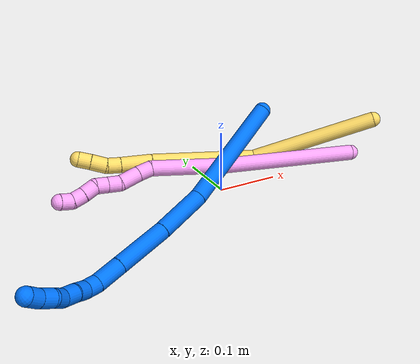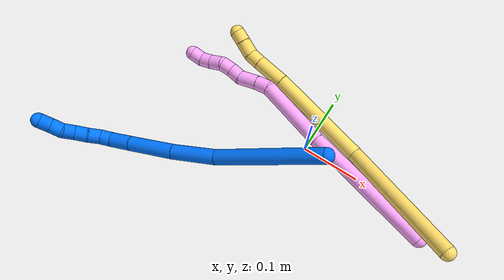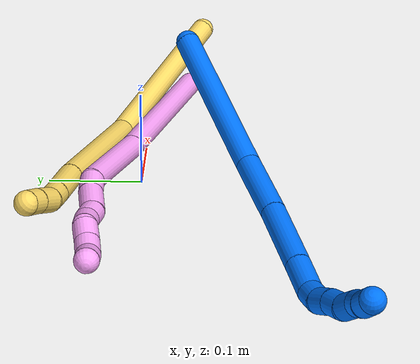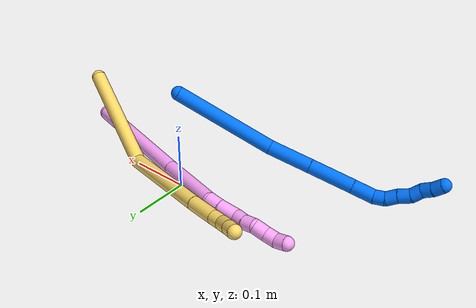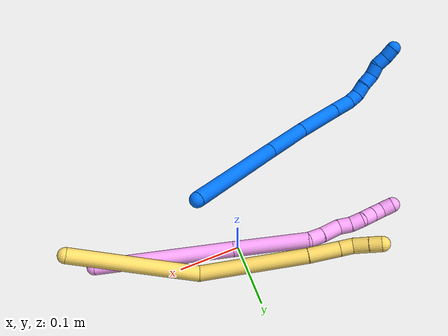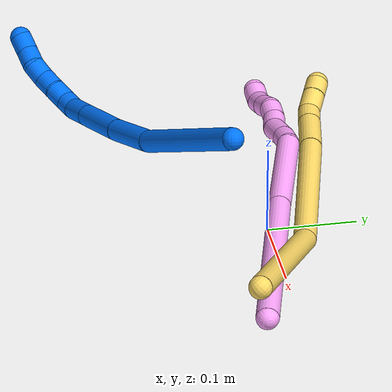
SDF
<sdf version="1.7">
 <world name="default">
  <model name="photoneo_s_sensor">
   <static>1</static>
   <pose>0 0 2 1.57079 1.57079 3.14159</pose>
   <link name="link">
    <inertial><mass>0.1</mass></inertial>
    <sensor name="sensor" type="depth">
     <update_rate>30</update_rate>
     <camera>
      <horizontal_fov>1.22</horizontal_fov>
      <image><width>1920</width><height>1200</height><format>B8G8R8</format></image>
      <clip><near>0.1</near><far>4</far></clip>
      <depth_camera><output>points</output></depth_camera>
     </camera>
     <plugin name="camera_plugin" filename="libgazebo_ros_depth_camera.so">
      <baseline>0.2</baseline>
      <alwaysOn>1</alwaysOn>
      <updateRate>0.0</updateRate>
      <cameraName>camera_ir</cameraName>
      <imageTopicName>/camera/color/image_raw</imageTopicName>
      <cameraInfoTopicName>/camera/color/camera_info</cameraInfoTopicName>
      <depthImageTopicName>/camera/depth/image_raw</depthImageTopicName>
      <depthImageCameraInfoTopicName>/camera/depth/camera_info</depthImageCameraInfoTopicName>
      <pointCloudTopicName>/camera/depth/points</pointCloudTopicName>
      <frameName>fr_optical</frameName>
      <pointCloudCutoff>0.1</pointCloudCutoff>
      <pointCloudCutoffMax>2.0</pointCloudCutoffMax>
      <distortionK1>0</distortionK1>
      <distortionK2>0</distortionK2>
      <distortionK3>0</distortionK3>
      <distortionT1>0</distortionT1>
      <distortionT2>0</distortionT2>
      <CxPrime>0</CxPrime>
      <Cx>0</Cx>
      <Cy>0</Cy>
      <focalLength>0</focalLength>
      <hackBaseline>0</hackBaseline>
     </plugin>
    </sensor>
   </link>
  </model>
  <model name="bin">
   <static>1</static>
   <link name="bottom">
    <collision name="collision-bottom">
     <pose>0 0 -0.01 0 -0 0</pose>
     <geometry><box><size>0.8 0.6 0.02</size></box></geometry>
     <surface>
      <friction><ode><mu>100</mu><mu2>100</mu2></ode></friction>
      <contact><collide_bitmask>65535</collide_bitmask></contact>
     </surface>
    </collision>
   </link>
   <link name="west_wall">
    <collision name="collision-west_wall">
     <pose>-0.41 0 0.1 0 -0 0</pose>
     <geometry><box><size>0.02 0.6 0.2</size></box></geometry>
     <surface>
      <friction><ode><mu>100</mu><mu2>100</mu2></ode></friction>
      <contact><collide_bitmask>65535</collide_bitmask></contact>
     </surface>
    </collision>
   </link>
   <link name="east_wall">
    <collision name="collision-east_wall">
     <pose>0.41 0 0.1 0 -0 0</pose>
     <geometry><box><size>0.02 0.6 0.2</size></box></geometry>
     <surface>
      <friction><ode><mu>100</mu><mu2>100</mu2></ode></friction>
      <contact><collide_bitmask>65535</collide_bitmask></contact>
     </surface>
    </collision>
   </link>
   <link name="south_wall">
    <collision name="collision-south_wall">
     <pose>0 -0.31 0.1 0 -0 0</pose>
     <geometry><box><size>0.8 0.02 0.2</size></box></geometry>
     <surface>
      <friction><ode><mu>100</mu><mu2>100</mu2></ode></friction>
      <contact><collide_bitmask>65535</collide_bitmask></contact>
     </surface>
    </collision>
   </link>
   <link name="north_wall">
    <collision name="collision-north_wall">
     <pose>0 0.31 0.1 0 -0 0</pose>
     <geometry><box><size>0.8 0.02 0.2</size></box></geometry>
     <surface>
      <friction><ode><mu>100</mu><mu2>100</mu2></ode></friction>
      <contact><collide_bitmask>65535</collide_bitmask></contact>
     </surface>
    </collision>
   </link>
  </model>
  <model name="4">
   <static>0</static>
   <link name="4">
    <collision name="collision-cylinder-e_1_1_4">
     <pose>-0.031753 0.005422 0.105348 -0.051425 -0.292387 0.007574</pose>
     <geometry><cylinder><radius>0.0125</radius><length>0.220326</length></cylinder></geometry>
     <surface>
      <friction><ode><mu>1.16</mu><mu2>1.16</mu2><slip1>0</slip1><slip2>0</slip2></ode></friction>
      <contact><ode><kp>1e+06</kp><kd>1</kd><max_vel>0</max_vel><min_depth>0.001</min_depth></ode></contact>
     </surface>
    </collision>
    <visual name="visual-cylinder-e_1_1_4">
     <pose>-0.031753 0.005422 0.105348 -0.051425 -0.292387 0.007574</pose>
     <geometry><cylinder><radius>0.0125</radius><length>0.220326</length></cylinder></geometry>
     <material><ambient>1 0.65098 0.996078 1</ambient></material>
    </visual>
    <collision name="collision-cylinder-e_2_4_5">
     <pose>-0.082782 0.01709 0.267196 -0.110092 -0.326937 0.018176</pose>
     <geometry><cylinder><radius>0.0125</radius><length>0.120047</length></cylinder></geometry>
     <surface>
      <friction><ode><mu>1.16</mu><mu2>1.16</mu2><slip1>0</slip1><slip2>0</slip2></ode></friction>
      <contact><ode><kp>1e+06</kp><kd>1</kd><max_vel>0</max_vel><min_depth>0.001</min_depth></ode></contact>
     </surface>
    </collision>
    <visual name="visual-cylinder-e_2_4_5">
     <pose>-0.082782 0.01709 0.267196 -0.110092 -0.326937 0.018176</pose>
     <geometry><cylinder><radius>0.0125</radius><length>0.120047</length></cylinder></geometry>
     <material><ambient>1 0.65098 0.996078 1</ambient></material>
    </visual>
    <collision name="collision-cylinder-e_3_5_6">
     <pose>-0.101998 0.022113 0.335318 0.104801 0.005144 0.00027</pose>
     <geometry><cylinder><radius>0.0125</radius><length>0.023374</length></cylinder></geometry>
     <surface>
      <friction><ode><mu>1.16</mu><mu2>1.16</mu2><slip1>0</slip1><slip2>0</slip2></ode></friction>
      <contact><ode><kp>1e+06</kp><kd>1</kd><max_vel>0</max_vel><min_depth>0.001</min_depth></ode></contact>
     </surface>
    </collision>
    <visual name="visual-cylinder-e_3_5_6">
     <pose>-0.101998 0.022113 0.335318 0.104801 0.005144 0.00027</pose>
     <geometry><cylinder><radius>0.0125</radius><length>0.023374</length></cylinder></geometry>
     <material><ambient>1 0.65098 0.996078 1</ambient></material>
    </visual>
    <collision name="collision-cylinder-e_4_6_7">
     <pose>-0.099891 0.019189 0.363127 0.104701 0.125127 0.006565</pose>
     <geometry><cylinder><radius>0.0125</radius><length>0.032808</length></cylinder></geometry>
     <surface>
      <friction><ode><mu>1.16</mu><mu2>1.16</mu2><slip1>0</slip1><slip2>0</slip2></ode></friction>
      <contact><ode><kp>1e+06</kp><kd>1</kd><max_vel>0</max_vel><min_depth>0.001</min_depth></ode></contact>
     </surface>
    </collision>
    <visual name="visual-cylinder-e_4_6_7">
     <pose>-0.099891 0.019189 0.363127 0.104701 0.125127 0.006565</pose>
     <geometry><cylinder><radius>0.0125</radius><length>0.032808</length></cylinder></geometry>
     <material><ambient>1 0.65098 0.996078 1</ambient></material>
    </visual>
    <collision name="collision-cylinder-e_5_7_8">
     <pose>-0.100194 0.018291 0.389409 -0.079323 -0.228046 0.009089</pose>
     <geometry><cylinder><radius>0.0125</radius><length>0.020794</length></cylinder></geometry>
     <surface>
      <friction><ode><mu>1.16</mu><mu2>1.16</mu2><slip1>0</slip1><slip2>0</slip2></ode></friction>
      <contact><ode><kp>1e+06</kp><kd>1</kd><max_vel>0</max_vel><min_depth>0.001</min_depth></ode></contact>
     </surface>
    </collision>
    <visual name="visual-cylinder-e_5_7_8">
     <pose>-0.100194 0.018291 0.389409 -0.079323 -0.228046 0.009089</pose>
     <geometry><cylinder><radius>0.0125</radius><length>0.020794</length></cylinder></geometry>
     <material><ambient>1 0.65098 0.996078 1</ambient></material>
    </visual>
    <collision name="collision-cylinder-e_6_8_9">
     <pose>-0.103094 0.021096 0.409361 -0.200478 -0.054516 0.005484</pose>
     <geometry><cylinder><radius>0.0125</radius><length>0.020144</length></cylinder></geometry>
     <surface>
      <friction><ode><mu>1.16</mu><mu2>1.16</mu2><slip1>0</slip1><slip2>0</slip2></ode></friction>
      <contact><ode><kp>1e+06</kp><kd>1</kd><max_vel>0</max_vel><min_depth>0.001</min_depth></ode></contact>
     </surface>
    </collision>
    <visual name="visual-cylinder-e_6_8_9">
     <pose>-0.103094 0.021096 0.409361 -0.200478 -0.054516 0.005484</pose>
     <geometry><cylinder><radius>0.0125</radius><length>0.020144</length></cylinder></geometry>
     <material><ambient>1 0.65098 0.996078 1</ambient></material>
    </visual>
    <collision name="collision-cylinder-e_7_9_10">
     <pose>-0.10162 0.020336 0.429873 0.253721 0.181711 0.023239</pose>
     <geometry><cylinder><radius>0.0125</radius><length>0.022385</length></cylinder></geometry>
     <surface>
      <friction><ode><mu>1.16</mu><mu2>1.16</mu2><slip1>0</slip1><slip2>0</slip2></ode></friction>
      <contact><ode><kp>1e+06</kp><kd>1</kd><max_vel>0</max_vel><min_depth>0.001</min_depth></ode></contact>
     </surface>
    </collision>
    <visual name="visual-cylinder-e_7_9_10">
     <pose>-0.10162 0.020336 0.429873 0.253721 0.181711 0.023239</pose>
     <geometry><cylinder><radius>0.0125</radius><length>0.022385</length></cylinder></geometry>
     <material><ambient>1 0.65098 0.996078 1</ambient></material>
    </visual>
    <collision name="collision-cylinder-e_8_10_11">
     <pose>-0.098373 0.016117 0.450392 0.146557 0.122216 0.008983</pose>
     <geometry><cylinder><radius>0.0125</radius><length>0.020089</length></cylinder></geometry>
     <surface>
      <friction><ode><mu>1.16</mu><mu2>1.16</mu2><slip1>0</slip1><slip2>0</slip2></ode></friction>
      <contact><ode><kp>1e+06</kp><kd>1</kd><max_vel>0</max_vel><min_depth>0.001</min_depth></ode></contact>
     </surface>
    </collision>
    <visual name="visual-cylinder-e_8_10_11">
     <pose>-0.098373 0.016117 0.450392 0.146557 0.122216 0.008983</pose>
     <geometry><cylinder><radius>0.0125</radius><length>0.020089</length></cylinder></geometry>
     <material><ambient>1 0.65098 0.996078 1</ambient></material>
    </visual>
    <collision name="collision-cylinder-e_9_11_2">
     <pose>-0.097586 0.017403 0.469879 -0.277556 -0.043698 0.006105</pose>
     <geometry><cylinder><radius>0.0125</radius><length>0.020034</length></cylinder></geometry>
     <surface>
      <friction><ode><mu>1.16</mu><mu2>1.16</mu2><slip1>0</slip1><slip2>0</slip2></ode></friction>
      <contact><ode><kp>1e+06</kp><kd>1</kd><max_vel>0</max_vel><min_depth>0.001</min_depth></ode></contact>
     </surface>
    </collision>
    <visual name="visual-cylinder-e_9_11_2">
     <pose>-0.097586 0.017403 0.469879 -0.277556 -0.043698 0.006105</pose>
     <geometry><cylinder><radius>0.0125</radius><length>0.020034</length></cylinder></geometry>
     <material><ambient>1 0.65098 0.996078 1</ambient></material>
    </visual>
    <collision name="collision-sphere-2">
     <pose>-0.098023 0.020145 0.479503 0 -0 0</pose>
     <geometry><sphere><radius>0.0125</radius></sphere></geometry>
     <surface>
      <friction><ode><mu>1.16</mu><mu2>1.16</mu2><slip1>0</slip1><slip2>0</slip2></ode></friction>
      <contact><ode><kp>1e+06</kp><kd>1</kd><max_vel>0</max_vel><min_depth>0.001</min_depth></ode></contact>
     </surface>
    </collision>
    <visual name="visual-sphere-2">
     <pose>-0.098023 0.020145 0.479503 0 -0 0</pose>
     <geometry><sphere><radius>0.0125</radius></sphere></geometry>
     <material><ambient>1 0.65098 0.996078 1</ambient></material>
    </visual>
    <collision name="collision-sphere-11">
     <pose>-0.097148 0.014661 0.460254 0 -0 0</pose>
     <geometry><sphere><radius>0.0125</radius></sphere></geometry>
     <surface>
      <friction><ode><mu>1.16</mu><mu2>1.16</mu2><slip1>0</slip1><slip2>0</slip2></ode></friction>
      <contact><ode><kp>1e+06</kp><kd>1</kd><max_vel>0</max_vel><min_depth>0.001</min_depth></ode></contact>
     </surface>
    </collision>
    <visual name="visual-sphere-11">
     <pose>-0.097148 0.014661 0.460254 0 -0 0</pose>
     <geometry><sphere><radius>0.0125</radius></sphere></geometry>
     <material><ambient>1 0.65098 0.996078 1</ambient></material>
    </visual>
    <collision name="collision-sphere-10">
     <pose>-0.099597 0.017573 0.440529 0 -0 0</pose>
     <geometry><sphere><radius>0.0125</radius></sphere></geometry>
     <surface>
      <friction><ode><mu>1.16</mu><mu2>1.16</mu2><slip1>0</slip1><slip2>0</slip2></ode></friction>
      <contact><ode><kp>1e+06</kp><kd>1</kd><max_vel>0</max_vel><min_depth>0.001</min_depth></ode></contact>
     </surface>
    </collision>
    <visual name="visual-sphere-10">
     <pose>-0.099597 0.017573 0.440529 0 -0 0</pose>
     <geometry><sphere><radius>0.0125</radius></sphere></geometry>
     <material><ambient>1 0.65098 0.996078 1</ambient></material>
    </visual>
    <collision name="collision-sphere-9">
     <pose>-0.103643 0.023099 0.419217 0 -0 0</pose>
     <geometry><sphere><radius>0.0125</radius></sphere></geometry>
     <surface>
      <friction><ode><mu>1.16</mu><mu2>1.16</mu2><slip1>0</slip1><slip2>0</slip2></ode></friction>
      <contact><ode><kp>1e+06</kp><kd>1</kd><max_vel>0</max_vel><min_depth>0.001</min_depth></ode></contact>
     </surface>
    </collision>
    <visual name="visual-sphere-9">
     <pose>-0.103643 0.023099 0.419217 0 -0 0</pose>
     <geometry><sphere><radius>0.0125</radius></sphere></geometry>
     <material><ambient>1 0.65098 0.996078 1</ambient></material>
    </visual>
    <collision name="collision-sphere-4">
     <pose>-0.063506 0.010845 0.210696 0 -0 0</pose>
     <geometry><sphere><radius>0.0125</radius></sphere></geometry>
     <surface>
      <friction><ode><mu>1.16</mu><mu2>1.16</mu2><slip1>0</slip1><slip2>0</slip2></ode></friction>
      <contact><ode><kp>1e+06</kp><kd>1</kd><max_vel>0</max_vel><min_depth>0.001</min_depth></ode></contact>
     </surface>
    </collision>
    <visual name="visual-sphere-4">
     <pose>-0.063506 0.010845 0.210696 0 -0 0</pose>
     <geometry><sphere><radius>0.0125</radius></sphere></geometry>
     <material><ambient>1 0.65098 0.996078 1</ambient></material>
    </visual>
    <collision name="collision-sphere-1">
     <geometry><sphere><radius>0.0125</radius></sphere></geometry>
     <surface>
      <friction><ode><mu>1.16</mu><mu2>1.16</mu2><slip1>0</slip1><slip2>0</slip2></ode></friction>
      <contact><ode><kp>1e+06</kp><kd>1</kd><max_vel>0</max_vel><min_depth>0.001</min_depth></ode></contact>
     </surface>
    </collision>
    <visual name="visual-sphere-1">
     <geometry><sphere><radius>0.0125</radius></sphere></geometry>
     <material><ambient>1 0.65098 0.996078 1</ambient></material>
    </visual>
    <collision name="collision-sphere-8">
     <pose>-0.102545 0.019094 0.399505 0 -0 0</pose>
     <geometry><sphere><radius>0.0125</radius></sphere></geometry>
     <surface>
      <friction><ode><mu>1.16</mu><mu2>1.16</mu2><slip1>0</slip1><slip2>0</slip2></ode></friction>
      <contact><ode><kp>1e+06</kp><kd>1</kd><max_vel>0</max_vel><min_depth>0.001</min_depth></ode></contact>
     </surface>
    </collision>
    <visual name="visual-sphere-8">
     <pose>-0.102545 0.019094 0.399505 0 -0 0</pose>
     <geometry><sphere><radius>0.0125</radius></sphere></geometry>
     <material><ambient>1 0.65098 0.996078 1</ambient></material>
    </visual>
    <collision name="collision-sphere-5">
     <pose>-0.102059 0.023335 0.323695 0 -0 0</pose>
     <geometry><sphere><radius>0.0125</radius></sphere></geometry>
     <surface>
      <friction><ode><mu>1.16</mu><mu2>1.16</mu2><slip1>0</slip1><slip2>0</slip2></ode></friction>
      <contact><ode><kp>1e+06</kp><kd>1</kd><max_vel>0</max_vel><min_depth>0.001</min_depth></ode></contact>
     </surface>
    </collision>
    <visual name="visual-sphere-5">
     <pose>-0.102059 0.023335 0.323695 0 -0 0</pose>
     <geometry><sphere><radius>0.0125</radius></sphere></geometry>
     <material><ambient>1 0.65098 0.996078 1</ambient></material>
    </visual>
    <collision name="collision-sphere-6">
     <pose>-0.101938 0.02089 0.34694 0 -0 0</pose>
     <geometry><sphere><radius>0.0125</radius></sphere></geometry>
     <surface>
      <friction><ode><mu>1.16</mu><mu2>1.16</mu2><slip1>0</slip1><slip2>0</slip2></ode></friction>
      <contact><ode><kp>1e+06</kp><kd>1</kd><max_vel>0</max_vel><min_depth>0.001</min_depth></ode></contact>
     </surface>
    </collision>
    <visual name="visual-sphere-6">
     <pose>-0.101938 0.02089 0.34694 0 -0 0</pose>
     <geometry><sphere><radius>0.0125</radius></sphere></geometry>
     <material><ambient>1 0.65098 0.996078 1</ambient></material>
    </visual>
    <collision name="collision-sphere-7">
     <pose>-0.097844 0.017488 0.379313 0 -0 0</pose>
     <geometry><sphere><radius>0.0125</radius></sphere></geometry>
     <surface>
      <friction><ode><mu>1.16</mu><mu2>1.16</mu2><slip1>0</slip1><slip2>0</slip2></ode></friction>
      <contact><ode><kp>1e+06</kp><kd>1</kd><max_vel>0</max_vel><min_depth>0.001</min_depth></ode></contact>
     </surface>
    </collision>
    <visual name="visual-sphere-7">
     <pose>-0.097844 0.017488 0.379313 0 -0 0</pose>
     <geometry><sphere><radius>0.0125</radius></sphere></geometry>
     <material><ambient>1 0.65098 0.996078 1</ambient></material>
    </visual>
    <inertial>
     <pose>-0.065923 0.012651 0.238931 0 -0 0</pose>
     <mass>0.5</mass>
     <inertia>
      <ixx>0.001018</ixx>
      <ixy>0</ixy>
      <ixz>0</ixz>
      <iyy>0.001071</iyy>
      <iyz>0</iyz>
      <izz>0.000285</izz>
     </inertia>
    </inertial>
   </link>
   <pose>0.224764 -0.045029 0.034892 1.65478 0.142489 -1.53159</pose>
  </model>
  <model name="5">
   <static>0</static>
   <link name="5">
    <collision name="collision-cylinder-e_1_1_4">
     <pose>-0.087228 0.055742 0.009661 -1.39919 -0.995426 0.857768</pose>
     <geometry><cylinder><radius>0.0125</radius><length>0.207934</length></cylinder></geometry>
     <surface>
      <friction><ode><mu>1.16</mu><mu2>1.16</mu2><slip1>0</slip1><slip2>0</slip2></ode></friction>
      <contact><ode><kp>1e+06</kp><kd>1</kd><max_vel>0</max_vel><min_depth>0.001</min_depth></ode></contact>
     </surface>
    </collision>
    <visual name="visual-cylinder-e_1_1_4">
     <pose>-0.087228 0.055742 0.009661 -1.39919 -0.995426 0.857768</pose>
     <geometry><cylinder><radius>0.0125</radius><length>0.207934</length></cylinder></geometry>
     <material><ambient>1 0.858824 0.4 1</ambient></material>
    </visual>
    <collision name="collision-cylinder-e_2_4_5">
     <pose>-0.250058 0.144624 -0.007125 -2.24434 -1.0597 1.76576</pose>
     <geometry><cylinder><radius>0.0125</radius><length>0.173361</length></cylinder></geometry>
     <surface>
      <friction><ode><mu>1.16</mu><mu2>1.16</mu2><slip1>0</slip1><slip2>0</slip2></ode></friction>
      <contact><ode><kp>1e+06</kp><kd>1</kd><max_vel>0</max_vel><min_depth>0.001</min_depth></ode></contact>
     </surface>
    </collision>
    <visual name="visual-cylinder-e_2_4_5">
     <pose>-0.250058 0.144624 -0.007125 -2.24434 -1.0597 1.76576</pose>
     <geometry><cylinder><radius>0.0125</radius><length>0.173361</length></cylinder></geometry>
     <material><ambient>1 0.858824 0.4 1</ambient></material>
    </visual>
    <collision name="collision-cylinder-e_3_5_6">
     <pose>-0.346978 0.189157 -0.041884 -2.20108 -0.986282 1.62652</pose>
     <geometry><cylinder><radius>0.0125</radius><length>0.051119</length></cylinder></geometry>
     <surface>
      <friction><ode><mu>1.16</mu><mu2>1.16</mu2><slip1>0</slip1><slip2>0</slip2></ode></friction>
      <contact><ode><kp>1e+06</kp><kd>1</kd><max_vel>0</max_vel><min_depth>0.001</min_depth></ode></contact>
     </surface>
    </collision>
    <visual name="visual-cylinder-e_3_5_6">
     <pose>-0.346978 0.189157 -0.041884 -2.20108 -0.986282 1.62652</pose>
     <geometry><cylinder><radius>0.0125</radius><length>0.051119</length></cylinder></geometry>
     <material><ambient>1 0.858824 0.4 1</ambient></material>
    </visual>
    <collision name="collision-cylinder-e_4_6_7">
     <pose>-0.377332 0.205003 -0.053918 -2.26706 -1.00004 1.7261</pose>
     <geometry><cylinder><radius>0.0125</radius><length>0.02148</length></cylinder></geometry>
     <surface>
      <friction><ode><mu>1.16</mu><mu2>1.16</mu2><slip1>0</slip1><slip2>0</slip2></ode></friction>
      <contact><ode><kp>1e+06</kp><kd>1</kd><max_vel>0</max_vel><min_depth>0.001</min_depth></ode></contact>
     </surface>
    </collision>
    <visual name="visual-cylinder-e_4_6_7">
     <pose>-0.377332 0.205003 -0.053918 -2.26706 -1.00004 1.7261</pose>
     <geometry><cylinder><radius>0.0125</radius><length>0.02148</length></cylinder></geometry>
     <material><ambient>1 0.858824 0.4 1</ambient></material>
    </visual>
    <collision name="collision-cylinder-e_5_7_8">
     <pose>-0.39862 0.210746 -0.061842 -2.84356 -1.22622 2.72112</pose>
     <geometry><cylinder><radius>0.0125</radius><length>0.026031</length></cylinder></geometry>
     <surface>
      <friction><ode><mu>1.16</mu><mu2>1.16</mu2><slip1>0</slip1><slip2>0</slip2></ode></friction>
      <contact><ode><kp>1e+06</kp><kd>1</kd><max_vel>0</max_vel><min_depth>0.001</min_depth></ode></contact>
     </surface>
    </collision>
    <visual name="visual-cylinder-e_5_7_8">
     <pose>-0.39862 0.210746 -0.061842 -2.84356 -1.22622 2.72112</pose>
     <geometry><cylinder><radius>0.0125</radius><length>0.026031</length></cylinder></geometry>
     <material><ambient>1 0.858824 0.4 1</ambient></material>
    </visual>
    <collision name="collision-cylinder-e_6_8_2">
     <pose>-0.420337 0.213425 -0.069078 -2.71253 -1.23205 2.54445</pose>
     <geometry><cylinder><radius>0.0125</radius><length>0.020074</length></cylinder></geometry>
     <surface>
      <friction><ode><mu>1.16</mu><mu2>1.16</mu2><slip1>0</slip1><slip2>0</slip2></ode></friction>
      <contact><ode><kp>1e+06</kp><kd>1</kd><max_vel>0</max_vel><min_depth>0.001</min_depth></ode></contact>
     </surface>
    </collision>
    <visual name="visual-cylinder-e_6_8_2">
     <pose>-0.420337 0.213425 -0.069078 -2.71253 -1.23205 2.54445</pose>
     <geometry><cylinder><radius>0.0125</radius><length>0.020074</length></cylinder></geometry>
     <material><ambient>1 0.858824 0.4 1</ambient></material>
    </visual>
    <collision name="collision-sphere-2">
     <pose>-0.429804 0.214812 -0.072111 0 -0 0</pose>
     <geometry><sphere><radius>0.0125</radius></sphere></geometry>
     <surface>
      <friction><ode><mu>1.16</mu><mu2>1.16</mu2><slip1>0</slip1><slip2>0</slip2></ode></friction>
      <contact><ode><kp>1e+06</kp><kd>1</kd><max_vel>0</max_vel><min_depth>0.001</min_depth></ode></contact>
     </surface>
    </collision>
    <visual name="visual-sphere-2">
     <pose>-0.429804 0.214812 -0.072111 0 -0 0</pose>
     <geometry><sphere><radius>0.0125</radius></sphere></geometry>
     <material><ambient>1 0.858824 0.4 1</ambient></material>
    </visual>
    <collision name="collision-sphere-4">
     <pose>-0.174455 0.111485 0.019321 0 -0 0</pose>
     <geometry><sphere><radius>0.0125</radius></sphere></geometry>
     <surface>
      <friction><ode><mu>1.16</mu><mu2>1.16</mu2><slip1>0</slip1><slip2>0</slip2></ode></friction>
      <contact><ode><kp>1e+06</kp><kd>1</kd><max_vel>0</max_vel><min_depth>0.001</min_depth></ode></contact>
     </surface>
    </collision>
    <visual name="visual-sphere-4">
     <pose>-0.174455 0.111485 0.019321 0 -0 0</pose>
     <geometry><sphere><radius>0.0125</radius></sphere></geometry>
     <material><ambient>1 0.858824 0.4 1</ambient></material>
    </visual>
    <collision name="collision-sphere-1">
     <geometry><sphere><radius>0.0125</radius></sphere></geometry>
     <surface>
      <friction><ode><mu>1.16</mu><mu2>1.16</mu2><slip1>0</slip1><slip2>0</slip2></ode></friction>
      <contact><ode><kp>1e+06</kp><kd>1</kd><max_vel>0</max_vel><min_depth>0.001</min_depth></ode></contact>
     </surface>
    </collision>
    <visual name="visual-sphere-1">
     <geometry><sphere><radius>0.0125</radius></sphere></geometry>
     <material><ambient>1 0.858824 0.4 1</ambient></material>
    </visual>
    <collision name="collision-sphere-8">
     <pose>-0.41087 0.212037 -0.066045 0 -0 0</pose>
     <geometry><sphere><radius>0.0125</radius></sphere></geometry>
     <surface>
      <friction><ode><mu>1.16</mu><mu2>1.16</mu2><slip1>0</slip1><slip2>0</slip2></ode></friction>
      <contact><ode><kp>1e+06</kp><kd>1</kd><max_vel>0</max_vel><min_depth>0.001</min_depth></ode></contact>
     </surface>
    </collision>
    <visual name="visual-sphere-8">
     <pose>-0.41087 0.212037 -0.066045 0 -0 0</pose>
     <geometry><sphere><radius>0.0125</radius></sphere></geometry>
     <material><ambient>1 0.858824 0.4 1</ambient></material>
    </visual>
    <collision name="collision-sphere-5">
     <pose>-0.325662 0.177764 -0.033572 0 -0 0</pose>
     <geometry><sphere><radius>0.0125</radius></sphere></geometry>
     <surface>
      <friction><ode><mu>1.16</mu><mu2>1.16</mu2><slip1>0</slip1><slip2>0</slip2></ode></friction>
      <contact><ode><kp>1e+06</kp><kd>1</kd><max_vel>0</max_vel><min_depth>0.001</min_depth></ode></contact>
     </surface>
    </collision>
    <visual name="visual-sphere-5">
     <pose>-0.325662 0.177764 -0.033572 0 -0 0</pose>
     <geometry><sphere><radius>0.0125</radius></sphere></geometry>
     <material><ambient>1 0.858824 0.4 1</ambient></material>
    </visual>
    <collision name="collision-sphere-6">
     <pose>-0.368294 0.200551 -0.050197 0 -0 0</pose>
     <geometry><sphere><radius>0.0125</radius></sphere></geometry>
     <surface>
      <friction><ode><mu>1.16</mu><mu2>1.16</mu2><slip1>0</slip1><slip2>0</slip2></ode></friction>
      <contact><ode><kp>1e+06</kp><kd>1</kd><max_vel>0</max_vel><min_depth>0.001</min_depth></ode></contact>
     </surface>
    </collision>
    <visual name="visual-sphere-6">
     <pose>-0.368294 0.200551 -0.050197 0 -0 0</pose>
     <geometry><sphere><radius>0.0125</radius></sphere></geometry>
     <material><ambient>1 0.858824 0.4 1</ambient></material>
    </visual>
    <collision name="collision-sphere-7">
     <pose>-0.386369 0.209455 -0.05764 0 -0 0</pose>
     <geometry><sphere><radius>0.0125</radius></sphere></geometry>
     <surface>
      <friction><ode><mu>1.16</mu><mu2>1.16</mu2><slip1>0</slip1><slip2>0</slip2></ode></friction>
      <contact><ode><kp>1e+06</kp><kd>1</kd><max_vel>0</max_vel><min_depth>0.001</min_depth></ode></contact>
     </surface>
    </collision>
    <visual name="visual-sphere-7">
     <pose>-0.386369 0.209455 -0.05764 0 -0 0</pose>
     <geometry><sphere><radius>0.0125</radius></sphere></geometry>
     <material><ambient>1 0.858824 0.4 1</ambient></material>
    </visual>
    <inertial>
     <pose>-0.21229 0.121013 -0.011045 0 -0 0</pose>
     <mass>0.5</mass>
     <inertia>
      <ixx>0.000725</ixx>
      <ixy>0</ixy>
      <ixz>0</ixz>
      <iyy>0.00147</iyy>
      <iyz>0</iyz>
      <izz>0.000449</izz>
     </inertia>
    </inertial>
   </link>
   <pose>0.255225 -0.059066 0.093183 -2.30033 0.18584 -0.747254</pose>
  </model>
  <model name="14">
   <static>0</static>
   <link name="14">
    <collision name="collision-cylinder-e_1_1_4">
     <pose>-0.086894 -0.022916 0.005243 1.34587 -1.30658 -1.09558</pose>
     <geometry><cylinder><radius>0.0125</radius><length>0.180036</length></cylinder></geometry>
     <surface>
      <friction><ode><mu>1.16</mu><mu2>1.16</mu2><slip1>0</slip1><slip2>0</slip2></ode></friction>
      <contact><ode><kp>1e+06</kp><kd>1</kd><max_vel>0</max_vel><min_depth>0.001</min_depth></ode></contact>
     </surface>
    </collision>
    <visual name="visual-cylinder-e_1_1_4">
     <pose>-0.086894 -0.022916 0.005243 1.34587 -1.30658 -1.09558</pose>
     <geometry><cylinder><radius>0.0125</radius><length>0.180036</length></cylinder></geometry>
     <material><ambient>0 0.462745 1 1</ambient></material>
    </visual>
    <collision name="collision-cylinder-e_2_4_5">
     <pose>-0.209859 -0.054102 0.019387 0.748651 -1.2459 -0.550114</pose>
     <geometry><cylinder><radius>0.0125</radius><length>0.076123</length></cylinder></geometry>
     <surface>
      <friction><ode><mu>1.16</mu><mu2>1.16</mu2><slip1>0</slip1><slip2>0</slip2></ode></friction>
      <contact><ode><kp>1e+06</kp><kd>1</kd><max_vel>0</max_vel><min_depth>0.001</min_depth></ode></contact>
     </surface>
    </collision>
    <visual name="visual-cylinder-e_2_4_5">
     <pose>-0.209859 -0.054102 0.019387 0.748651 -1.2459 -0.550114</pose>
     <geometry><cylinder><radius>0.0125</radius><length>0.076123</length></cylinder></geometry>
     <material><ambient>0 0.462745 1 1</ambient></material>
    </visual>
    <collision name="collision-cylinder-e_3_5_6">
     <pose>-0.283761 -0.069297 0.03936 0.558927 -1.23842 -0.403496</pose>
     <geometry><cylinder><radius>0.0125</radius><length>0.080045</length></cylinder></geometry>
     <surface>
      <friction><ode><mu>1.16</mu><mu2>1.16</mu2><slip1>0</slip1><slip2>0</slip2></ode></friction>
      <contact><ode><kp>1e+06</kp><kd>1</kd><max_vel>0</max_vel><min_depth>0.001</min_depth></ode></contact>
     </surface>
    </collision>
    <visual name="visual-cylinder-e_3_5_6">
     <pose>-0.283761 -0.069297 0.03936 0.558927 -1.23842 -0.403496</pose>
     <geometry><cylinder><radius>0.0125</radius><length>0.080045</length></cylinder></geometry>
     <material><ambient>0 0.462745 1 1</ambient></material>
    </visual>
    <collision name="collision-cylinder-e_4_6_7">
     <pose>-0.340051 -0.07943 0.055762 0.541868 -1.24572 -0.393829</pose>
     <geometry><cylinder><radius>0.0125</radius><length>0.038956</length></cylinder></geometry>
     <surface>
      <friction><ode><mu>1.16</mu><mu2>1.16</mu2><slip1>0</slip1><slip2>0</slip2></ode></friction>
      <contact><ode><kp>1e+06</kp><kd>1</kd><max_vel>0</max_vel><min_depth>0.001</min_depth></ode></contact>
     </surface>
    </collision>
    <visual name="visual-cylinder-e_4_6_7">
     <pose>-0.340051 -0.07943 0.055762 0.541868 -1.24572 -0.393829</pose>
     <geometry><cylinder><radius>0.0125</radius><length>0.038956</length></cylinder></geometry>
     <material><ambient>0 0.462745 1 1</ambient></material>
    </visual>
    <collision name="collision-cylinder-e_5_7_8">
     <pose>-0.366711 -0.08519 0.066434 0.445513 -0.9456 -0.230694</pose>
     <geometry><cylinder><radius>0.0125</radius><length>0.020232</length></cylinder></geometry>
     <surface>
      <friction><ode><mu>1.16</mu><mu2>1.16</mu2><slip1>0</slip1><slip2>0</slip2></ode></friction>
      <contact><ode><kp>1e+06</kp><kd>1</kd><max_vel>0</max_vel><min_depth>0.001</min_depth></ode></contact>
     </surface>
    </collision>
    <visual name="visual-cylinder-e_5_7_8">
     <pose>-0.366711 -0.08519 0.066434 0.445513 -0.9456 -0.230694</pose>
     <geometry><cylinder><radius>0.0125</radius><length>0.020232</length></cylinder></geometry>
     <material><ambient>0 0.462745 1 1</ambient></material>
    </visual>
    <collision name="collision-cylinder-e_6_8_9">
     <pose>-0.38062 -0.092691 0.079345 0.579184 -0.562888 -0.171872</pose>
     <geometry><cylinder><radius>0.0125</radius><length>0.021387</length></cylinder></geometry>
     <surface>
      <friction><ode><mu>1.16</mu><mu2>1.16</mu2><slip1>0</slip1><slip2>0</slip2></ode></friction>
      <contact><ode><kp>1e+06</kp><kd>1</kd><max_vel>0</max_vel><min_depth>0.001</min_depth></ode></contact>
     </surface>
    </collision>
    <visual name="visual-cylinder-e_6_8_9">
     <pose>-0.38062 -0.092691 0.079345 0.579184 -0.562888 -0.171872</pose>
     <geometry><cylinder><radius>0.0125</radius><length>0.021387</length></cylinder></geometry>
     <material><ambient>0 0.462745 1 1</ambient></material>
    </visual>
    <collision name="collision-cylinder-e_7_9_10">
     <pose>-0.393842 -0.101675 0.09412 0.510401 -0.738315 -0.201192</pose>
     <geometry><cylinder><radius>0.0125</radius><length>0.022334</length></cylinder></geometry>
     <surface>
      <friction><ode><mu>1.16</mu><mu2>1.16</mu2><slip1>0</slip1><slip2>0</slip2></ode></friction>
      <contact><ode><kp>1e+06</kp><kd>1</kd><max_vel>0</max_vel><min_depth>0.001</min_depth></ode></contact>
     </surface>
    </collision>
    <visual name="visual-cylinder-e_7_9_10">
     <pose>-0.393842 -0.101675 0.09412 0.510401 -0.738315 -0.201192</pose>
     <geometry><cylinder><radius>0.0125</radius><length>0.022334</length></cylinder></geometry>
     <material><ambient>0 0.462745 1 1</ambient></material>
    </visual>
    <collision name="collision-cylinder-e_8_10_11">
     <pose>-0.404697 -0.110724 0.109672 0.541021 -0.330354 -0.092386</pose>
     <geometry><cylinder><radius>0.0125</radius><length>0.020585</length></cylinder></geometry>
     <surface>
      <friction><ode><mu>1.16</mu><mu2>1.16</mu2><slip1>0</slip1><slip2>0</slip2></ode></friction>
      <contact><ode><kp>1e+06</kp><kd>1</kd><max_vel>0</max_vel><min_depth>0.001</min_depth></ode></contact>
     </surface>
    </collision>
    <visual name="visual-cylinder-e_8_10_11">
     <pose>-0.404697 -0.110724 0.109672 0.541021 -0.330354 -0.092386</pose>
     <geometry><cylinder><radius>0.0125</radius><length>0.020585</length></cylinder></geometry>
     <material><ambient>0 0.462745 1 1</ambient></material>
    </visual>
    <collision name="collision-cylinder-e_9_11_12">
     <pose>-0.413518 -0.117442 0.126237 0.204363 -0.57857 -0.061019</pose>
     <geometry><cylinder><radius>0.0125</radius><length>0.020051</length></cylinder></geometry>
     <surface>
      <friction><ode><mu>1.16</mu><mu2>1.16</mu2><slip1>0</slip1><slip2>0</slip2></ode></friction>
      <contact><ode><kp>1e+06</kp><kd>1</kd><max_vel>0</max_vel><min_depth>0.001</min_depth></ode></contact>
     </surface>
    </collision>
    <visual name="visual-cylinder-e_9_11_12">
     <pose>-0.413518 -0.117442 0.126237 0.204363 -0.57857 -0.061019</pose>
     <geometry><cylinder><radius>0.0125</radius><length>0.020051</length></cylinder></geometry>
     <material><ambient>0 0.462745 1 1</ambient></material>
    </visual>
    <collision name="collision-cylinder-e_10_12_2">
     <pose>-0.422776 -0.121688 0.1435 0.274034 -0.382204 -0.053337</pose>
     <geometry><cylinder><radius>0.0125</radius><length>0.020251</length></cylinder></geometry>
     <surface>
      <friction><ode><mu>1.16</mu><mu2>1.16</mu2><slip1>0</slip1><slip2>0</slip2></ode></friction>
      <contact><ode><kp>1e+06</kp><kd>1</kd><max_vel>0</max_vel><min_depth>0.001</min_depth></ode></contact>
     </surface>
    </collision>
    <visual name="visual-cylinder-e_10_12_2">
     <pose>-0.422776 -0.121688 0.1435 0.274034 -0.382204 -0.053337</pose>
     <geometry><cylinder><radius>0.0125</radius><length>0.020251</length></cylinder></geometry>
     <material><ambient>0 0.462745 1 1</ambient></material>
    </visual>
    <collision name="collision-sphere-2">
     <pose>-0.426553 -0.12423 0.152545 0 -0 0</pose>
     <geometry><sphere><radius>0.0125</radius></sphere></geometry>
     <surface>
      <friction><ode><mu>1.16</mu><mu2>1.16</mu2><slip1>0</slip1><slip2>0</slip2></ode></friction>
      <contact><ode><kp>1e+06</kp><kd>1</kd><max_vel>0</max_vel><min_depth>0.001</min_depth></ode></contact>
     </surface>
    </collision>
    <visual name="visual-sphere-2">
     <pose>-0.426553 -0.12423 0.152545 0 -0 0</pose>
     <geometry><sphere><radius>0.0125</radius></sphere></geometry>
     <material><ambient>0 0.462745 1 1</ambient></material>
    </visual>
    <collision name="collision-sphere-12">
     <pose>-0.419 -0.119145 0.134456 0 -0 0</pose>
     <geometry><sphere><radius>0.0125</radius></sphere></geometry>
     <surface>
      <friction><ode><mu>1.16</mu><mu2>1.16</mu2><slip1>0</slip1><slip2>0</slip2></ode></friction>
      <contact><ode><kp>1e+06</kp><kd>1</kd><max_vel>0</max_vel><min_depth>0.001</min_depth></ode></contact>
     </surface>
    </collision>
    <visual name="visual-sphere-12">
     <pose>-0.419 -0.119145 0.134456 0 -0 0</pose>
     <geometry><sphere><radius>0.0125</radius></sphere></geometry>
     <material><ambient>0 0.462745 1 1</ambient></material>
    </visual>
    <collision name="collision-sphere-11">
     <pose>-0.408036 -0.115739 0.118018 0 -0 0</pose>
     <geometry><sphere><radius>0.0125</radius></sphere></geometry>
     <surface>
      <friction><ode><mu>1.16</mu><mu2>1.16</mu2><slip1>0</slip1><slip2>0</slip2></ode></friction>
      <contact><ode><kp>1e+06</kp><kd>1</kd><max_vel>0</max_vel><min_depth>0.001</min_depth></ode></contact>
     </surface>
    </collision>
    <visual name="visual-sphere-11">
     <pose>-0.408036 -0.115739 0.118018 0 -0 0</pose>
     <geometry><sphere><radius>0.0125</radius></sphere></geometry>
     <material><ambient>0 0.462745 1 1</ambient></material>
    </visual>
    <collision name="collision-sphere-10">
     <pose>-0.401358 -0.10571 0.101327 0 -0 0</pose>
     <geometry><sphere><radius>0.0125</radius></sphere></geometry>
     <surface>
      <friction><ode><mu>1.16</mu><mu2>1.16</mu2><slip1>0</slip1><slip2>0</slip2></ode></friction>
      <contact><ode><kp>1e+06</kp><kd>1</kd><max_vel>0</max_vel><min_depth>0.001</min_depth></ode></contact>
     </surface>
    </collision>
    <visual name="visual-sphere-10">
     <pose>-0.401358 -0.10571 0.101327 0 -0 0</pose>
     <geometry><sphere><radius>0.0125</radius></sphere></geometry>
     <material><ambient>0 0.462745 1 1</ambient></material>
    </visual>
    <collision name="collision-sphere-9">
     <pose>-0.386327 -0.097641 0.086914 0 -0 0</pose>
     <geometry><sphere><radius>0.0125</radius></sphere></geometry>
     <surface>
      <friction><ode><mu>1.16</mu><mu2>1.16</mu2><slip1>0</slip1><slip2>0</slip2></ode></friction>
      <contact><ode><kp>1e+06</kp><kd>1</kd><max_vel>0</max_vel><min_depth>0.001</min_depth></ode></contact>
     </surface>
    </collision>
    <visual name="visual-sphere-9">
     <pose>-0.386327 -0.097641 0.086914 0 -0 0</pose>
     <geometry><sphere><radius>0.0125</radius></sphere></geometry>
     <material><ambient>0 0.462745 1 1</ambient></material>
    </visual>
    <collision name="collision-sphere-4">
     <pose>-0.173788 -0.045832 0.010486 0 -0 0</pose>
     <geometry><sphere><radius>0.0125</radius></sphere></geometry>
     <surface>
      <friction><ode><mu>1.16</mu><mu2>1.16</mu2><slip1>0</slip1><slip2>0</slip2></ode></friction>
      <contact><ode><kp>1e+06</kp><kd>1</kd><max_vel>0</max_vel><min_depth>0.001</min_depth></ode></contact>
     </surface>
    </collision>
    <visual name="visual-sphere-4">
     <pose>-0.173788 -0.045832 0.010486 0 -0 0</pose>
     <geometry><sphere><radius>0.0125</radius></sphere></geometry>
     <material><ambient>0 0.462745 1 1</ambient></material>
    </visual>
    <collision name="collision-sphere-1">
     <geometry><sphere><radius>0.0125</radius></sphere></geometry>
     <surface>
      <friction><ode><mu>1.16</mu><mu2>1.16</mu2><slip1>0</slip1><slip2>0</slip2></ode></friction>
      <contact><ode><kp>1e+06</kp><kd>1</kd><max_vel>0</max_vel><min_depth>0.001</min_depth></ode></contact>
     </surface>
    </collision>
    <visual name="visual-sphere-1">
     <geometry><sphere><radius>0.0125</radius></sphere></geometry>
     <material><ambient>0 0.462745 1 1</ambient></material>
    </visual>
    <collision name="collision-sphere-8">
     <pose>-0.374914 -0.087741 0.071777 0 -0 0</pose>
     <geometry><sphere><radius>0.0125</radius></sphere></geometry>
     <surface>
      <friction><ode><mu>1.16</mu><mu2>1.16</mu2><slip1>0</slip1><slip2>0</slip2></ode></friction>
      <contact><ode><kp>1e+06</kp><kd>1</kd><max_vel>0</max_vel><min_depth>0.001</min_depth></ode></contact>
     </surface>
    </collision>
    <visual name="visual-sphere-8">
     <pose>-0.374914 -0.087741 0.071777 0 -0 0</pose>
     <geometry><sphere><radius>0.0125</radius></sphere></geometry>
     <material><ambient>0 0.462745 1 1</ambient></material>
    </visual>
    <collision name="collision-sphere-5">
     <pose>-0.245929 -0.062372 0.028288 0 -0 0</pose>
     <geometry><sphere><radius>0.0125</radius></sphere></geometry>
     <surface>
      <friction><ode><mu>1.16</mu><mu2>1.16</mu2><slip1>0</slip1><slip2>0</slip2></ode></friction>
      <contact><ode><kp>1e+06</kp><kd>1</kd><max_vel>0</max_vel><min_depth>0.001</min_depth></ode></contact>
     </surface>
    </collision>
    <visual name="visual-sphere-5">
     <pose>-0.245929 -0.062372 0.028288 0 -0 0</pose>
     <geometry><sphere><radius>0.0125</radius></sphere></geometry>
     <material><ambient>0 0.462745 1 1</ambient></material>
    </visual>
    <collision name="collision-sphere-6">
     <pose>-0.321593 -0.076222 0.050432 0 -0 0</pose>
     <geometry><sphere><radius>0.0125</radius></sphere></geometry>
     <surface>
      <friction><ode><mu>1.16</mu><mu2>1.16</mu2><slip1>0</slip1><slip2>0</slip2></ode></friction>
      <contact><ode><kp>1e+06</kp><kd>1</kd><max_vel>0</max_vel><min_depth>0.001</min_depth></ode></contact>
     </surface>
    </collision>
    <visual name="visual-sphere-6">
     <pose>-0.321593 -0.076222 0.050432 0 -0 0</pose>
     <geometry><sphere><radius>0.0125</radius></sphere></geometry>
     <material><ambient>0 0.462745 1 1</ambient></material>
    </visual>
    <collision name="collision-sphere-7">
     <pose>-0.358509 -0.082638 0.061091 0 -0 0</pose>
     <geometry><sphere><radius>0.0125</radius></sphere></geometry>
     <surface>
      <friction><ode><mu>1.16</mu><mu2>1.16</mu2><slip1>0</slip1><slip2>0</slip2></ode></friction>
      <contact><ode><kp>1e+06</kp><kd>1</kd><max_vel>0</max_vel><min_depth>0.001</min_depth></ode></contact>
     </surface>
    </collision>
    <visual name="visual-sphere-7">
     <pose>-0.358509 -0.082638 0.061091 0 -0 0</pose>
     <geometry><sphere><radius>0.0125</radius></sphere></geometry>
     <material><ambient>0 0.462745 1 1</ambient></material>
    </visual>
    <inertial>
     <pose>-0.234239 -0.059921 0.041161 0 -0 0</pose>
     <mass>0.5</mass>
     <inertia>
      <ixx>-6.9e-05</ixx>
      <ixy>0</ixy>
      <ixz>0</ixz>
      <iyy>0.000423</iyy>
      <iyz>0</iyz>
      <izz>0.000727</izz>
     </inertia>
    </inertial>
   </link>
   <pose>0.043881 -0.048368 0.14517 -0.092031 -0.563576 0.140116</pose>
  </model>
 </world>
</sdf>
